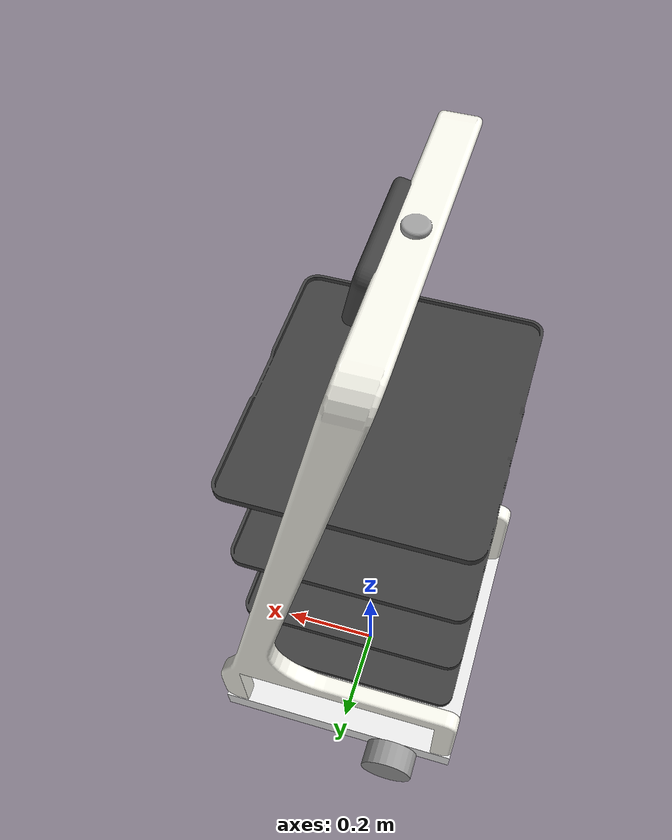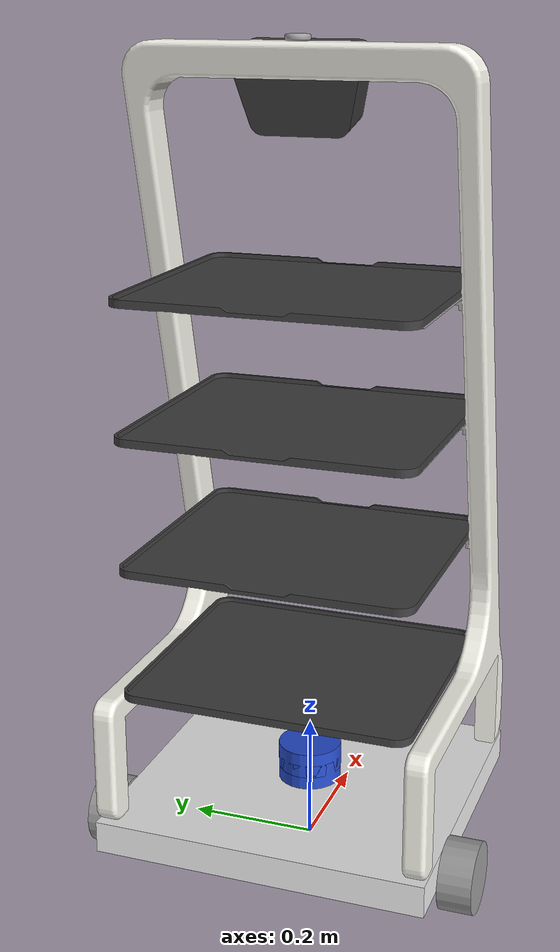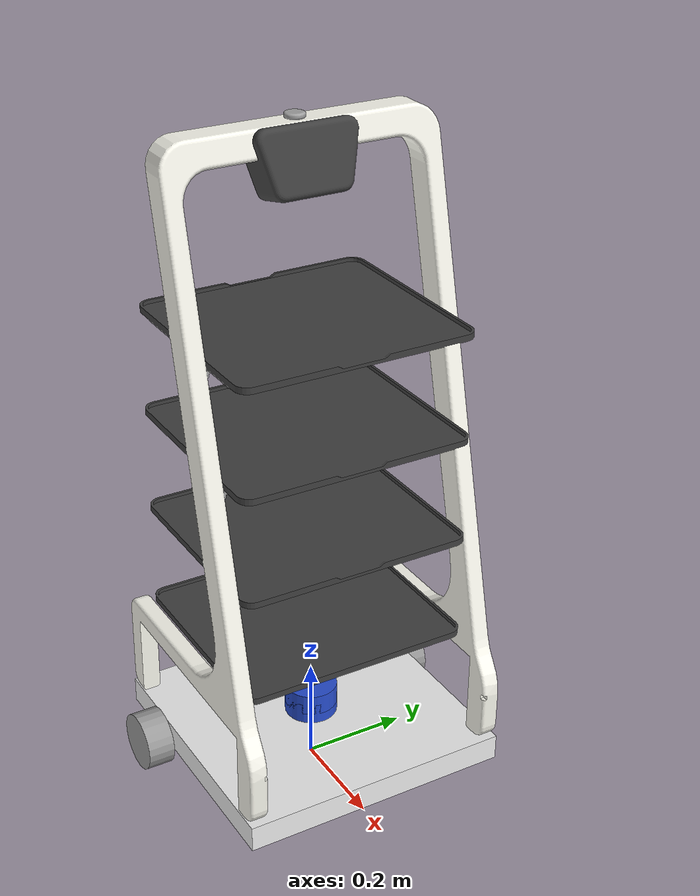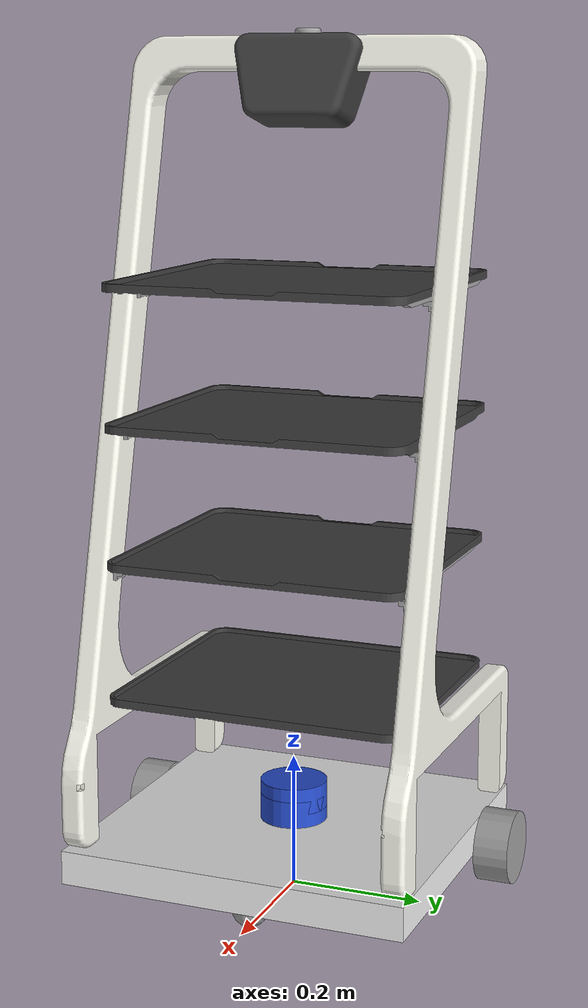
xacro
<?xml version="1.0"?>
<robot xmlns:xacro="http://www.ros.org/wiki/xacro">
    <xacro:include filename="common_properties.xacro"/>
    <xacro:property name="base_length" value="0.5"/>
    <xacro:property name="base_width" value="0.52"/>
    <xacro:property name="base_height" value="0.05"/>
    <xacro:property name="wheel_radius" value="0.055"/>
    <xacro:property name="wheel_length" value="0.052"/>
    <xacro:property name="caster_radius" value="${wheel_radius / 2.0}"/>

    <link name="base_footprint"/>

    <link name="base_link">
        <visual>
            <geometry>
                <box size="${base_length} ${base_width} ${base_height}"/>
            </geometry>
            <origin xyz="0 0 ${base_height / 2.0}" rpy="0 0 0"/>
            <material name="white"/>
        </visual>
        <xacro:box_inertia m="5.0" l="${2*base_length}" w="${2*base_width}" h="${2*base_height}"
         xyz="0 0 ${2*base_height / 2.0}" rpy="0 0 0" />
        <collision>
            <geometry>
                <box size="${base_length} ${base_width} ${base_height}"/>
            </geometry>
            <origin xyz="0 0 ${base_height / 2.0}" rpy="0 0 0"/>
        </collision>
    </link>
    <link name="custom_model">
    <visual>
        <geometry>
            <mesh filename="file://$(find pal_robot)/config/redlinear_v.dae"/>
        </geometry>
        <origin xyz="0 0 0.1" rpy="0 0 1.57"/>
    </visual>
    <xacro:box_inertia m="5.0" l="0.5" w="0.5" h="0.1"
         xyz="0 0 0.25" rpy="0 0 0" />
    <collision>
        <geometry>
            <mesh filename="file://$(find pal_robot)/config/redlinear_v.dae"/>
        </geometry>
        <origin xyz="0 0 0.1" rpy="0 0 1.57"/>
    </collision>
</link>

<joint name="base_to_custom_model" type="fixed">
    <parent link="base_link"/>
    <child link="custom_model"/>
    <origin xyz="0 0 0.05" rpy="0 0 0"/>
</joint>

    <link name="imu">
        <visual>
            <geometry>
                <box size="0.05 0.05 0.05"/>
            </geometry>
            <material name="white"/>
        </visual>
        <xacro:box_inertia m="1.0" l="0.1" w="0.1" h="0.1"
         xyz="0 0 0.05" rpy="0 0 0" />
        <collision>
            <geometry>
                <box size="0.05 0.05 0.05"/>
            </geometry>
        </collision>
    </link>
    <gazebo reference="imu">
        <material>Gazebo/Red</material>
    </gazebo>

    <xacro:macro name="wheel_link" params="prefix">
        <link name="${prefix}_wheel_link">
            <visual>
                <geometry>
                    <cylinder radius="${wheel_radius}" length="${wheel_length}"/>
                </geometry>
                <origin xyz="0 0 0" rpy="${pi/2.0} 0 0"/>
                <material name ="grey"/>
            </visual>
            <xacro:cylinder_inertia m="1.0" r="${2*wheel_radius}" h="${2*wheel_length}" xyz="0 0 0" rpy="${pi/2.0} 0 0"/>
            <collision>
                <geometry>
                    <cylinder radius="${wheel_radius}" length="${wheel_length}"/>
                </geometry>
                <origin xyz="0 0 0" rpy="${pi/2.0} 0 0"/>
            </collision>
        </link>
    </xacro:macro>
    <link name="laser_frame">
        <visual>
            <geometry>
                <cylinder radius="0.05" length="0.04"/>
            </geometry>
            <material name="blue"/>
        </visual>
        <collision>
            <geometry>
                <cylinder radius="0.05" length="0.04"/>
            </geometry>
        </collision>
        <xacro:cylinder_inertia m="1.0" r="0.05" h="0.04" xyz="0 0 0" rpy="0 0 0"/>
    </link>
    <link name="laser_base">
        <visual>
            <geometry>
                <cylinder radius="0.05" length="0.08"/>
            </geometry>
            <material name="blue"/>
        </visual>
        <collision>
            <geometry>
                <cylinder radius="0.05" length="0.08"/>
            </geometry>
        </collision>
        <xacro:cylinder_inertia m="1.0" r="0.05" h="0.08" xyz="0 0 0" rpy="0 0 0"/>
    </link>
    <gazebo reference="laser_base">
        <material>Gazebo/White</material>
    </gazebo>

    <xacro:wheel_link prefix="left"/>
    <xacro:wheel_link prefix="right"/>

    <gazebo reference="left_wheel_link">
        <material>Gazebo/Black</material>
        <mu1 value="1500"/>
        <mu2 value="1500"/>
    </gazebo>
    <gazebo reference="right_wheel_link">
        <material>Gazebo/Black</material>
        <mu1 value="1500"/>
        <mu2 value="1500"/>
    </gazebo>

    <link name="caster_wheel_link">
        <visual>
            <geometry>
                <sphere radius="${caster_radius}"/>
            </geometry>
            <origin xyz="0 0 0" rpy="0 0 0"/>
            <material name="grey"/>
        </visual>
        <xacro:sphere_inertia m="0.5" r="${2*caster_radius}" xyz="0 0 0" rpy="0 0 0" />
        <collision>
            <geometry>
                <sphere radius="${caster_radius}"/>
            </geometry>
            <origin xyz="0 0 0" rpy="0 0 0"/>
        </collision>
    </link>
    <gazebo reference="caster_wheel_link">
        <material>Gazebo/Black</material>
        <mu1 value="0.01"/>
        <mu2 value="0.01"/>
    </gazebo>

    <joint name="base_joint" type="fixed">
        <parent link="base_footprint"/>
        <child link="base_link"/>
        <origin xyz="0 0 ${wheel_radius}" rpy="0 0 0"/>

    </joint>

    <joint name="base_right_wheel_joint" type="continuous">
        <parent link="base_link"/>
        <child link="right_wheel_link"/>
        <origin xyz="${-base_length / 4.0} ${-((base_width / 2.0) + (wheel_length/2.0))} 0" rpy="0 0 0"/>
        <axis xyz="0 1 0"/>
        <limit velocity="100" effort="100"/>
    </joint>
    <joint name="laser_base_joint" type="fixed">
        <parent link="base_link"/>
        <child link="laser_base"/>
        <origin xyz="0.0 0.0 0.05" rpy="0 0 0"/>
        <axis xyz="0 0 0"/>
        <limit velocity="100" effort="100"/>
    </joint>
    <joint name="laser_joint" type="fixed">
        <parent link="laser_base"/>
        <child link="laser_frame"/>
        <origin xyz="0.0 0.0 0.04" rpy="0 0 0"/>
        <axis xyz="0 0 0"/>
        <limit velocity="100" effort="100"/>
    </joint>
    <joint name="imu_joint" type="fixed">
        <parent link="base_link"/>
        <child link="imu"/>
        <origin xyz="0.0 0.0 0.05" rpy="0 0 0"/>
        <axis xyz="0 0 0"/>
        <limit velocity="100" effort="100"/>
    </joint>

    <joint name="base_left_wheel_joint" type="continuous">
        <parent link="base_link"/>
        <child link="left_wheel_link"/>
        <origin xyz="${-base_length / 4.0} ${(base_width / 2.0) + (wheel_length/2.0)} 0" rpy="0 0 0"/>
        <axis xyz="0 1 0"/>
        <limit velocity="100" effort="100"/>
    </joint>

    <joint name="base_caster_wheel_joint" type="fixed">
        <parent link="base_link"/>
        <child link="caster_wheel_link"/>
        <origin xyz="${base_length / 3.0} 0 ${-caster_radius}" rpy="0 0 0"/>
    </joint>
</robot>
